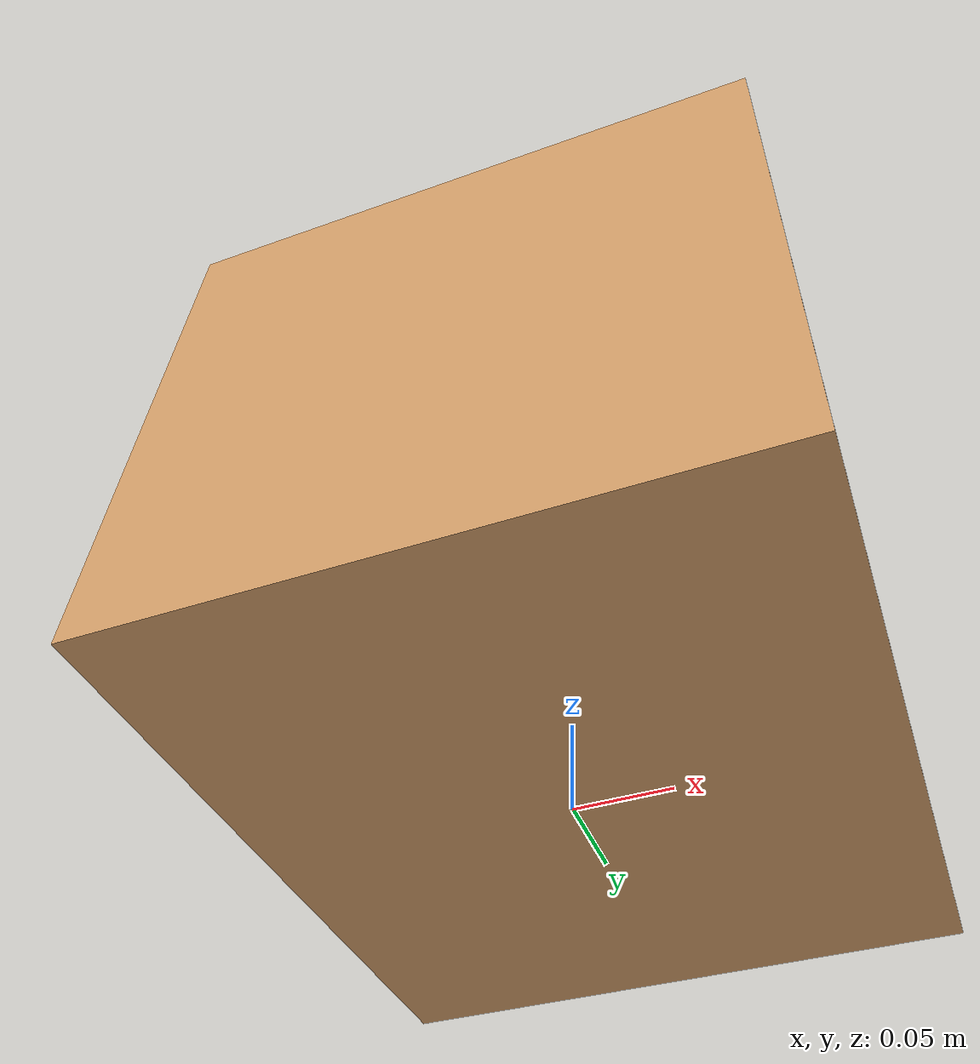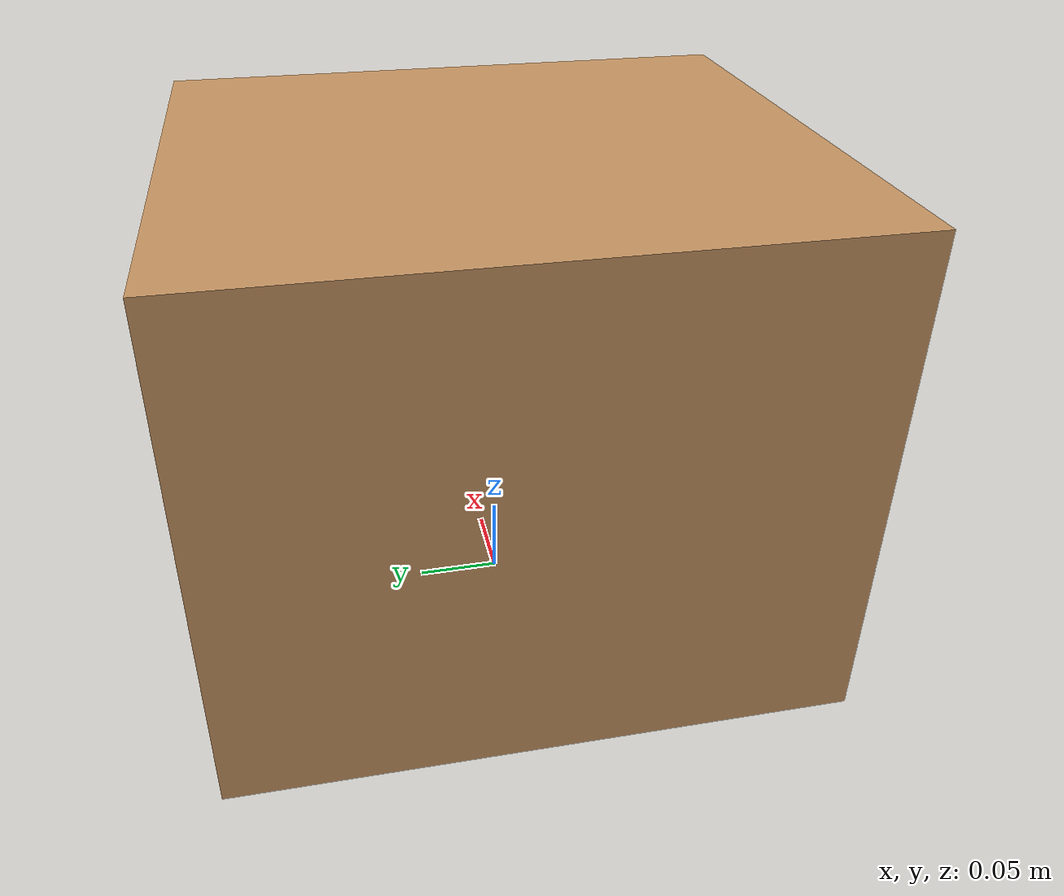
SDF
<?xml version="1.0"?>
<!-- box A of the parking: 32 cm along the path of the car, 36 across, 30 tall -->
<sdf version="1.9">
  <model name="box">
    <static>true</static>
    <link name="link">
      <pose>0 0 0.15 0 0 0</pose>
      <collision name="c"><geometry><box><size>0.32 0.36 0.30</size></box></geometry></collision>
      <visual name="v">
        <geometry><box><size>0.32 0.36 0.30</size></box></geometry>
        <material><ambient>0.8 0.6 0.4 1</ambient><diffuse>0.8 0.6 0.4 1</diffuse></material>
      </visual>
    </link>
  </model>
</sdf>
